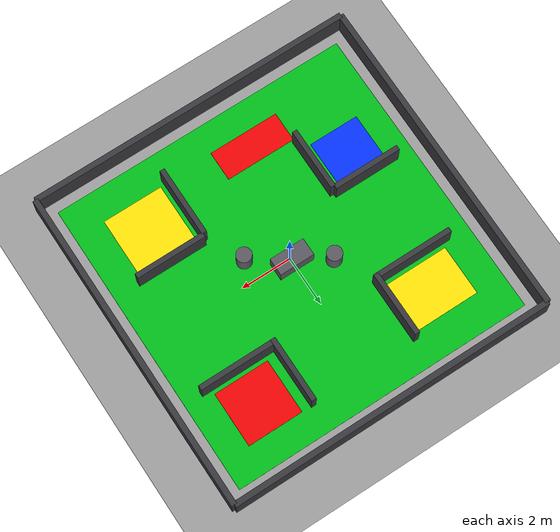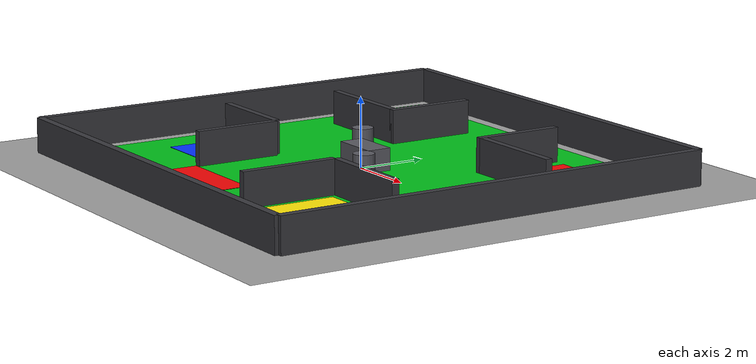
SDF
<?xml version="1.0"?>
<sdf version="1.6">
  <world name="mixed_zones">
    <gravity>0 0 -9.8</gravity>
    <scene>
      <ambient>0.55 0.55 0.55 1</ambient>
      <background>0.78 0.82 0.86 1</background>
      <shadows>true</shadows>
    </scene>

    <light type="directional" name="sun">
      <cast_shadows>true</cast_shadows>
      <pose>0 0 12 0 0 0</pose>
      <diffuse>0.95 0.95 0.9 1</diffuse>
      <specular>0.15 0.15 0.15 1</specular>
      <direction>-0.35 0.25 -0.9</direction>
    </light>

    <model name="ground_plane">
      <static>true</static>
      <link name="link">
        <collision name="collision">
          <geometry><plane><normal>0 0 1</normal></plane></geometry>
          <surface>
            <friction><ode><mu>1.0</mu><mu2>1.0</mu2></ode></friction>
          </surface>
        </collision>
        <visual name="visual">
          <geometry><plane><normal>0 0 1</normal><size>80 80</size></plane></geometry>
          <material><ambient>0.62 0.62 0.62 1</ambient><diffuse>0.62 0.62 0.62 1</diffuse></material>
        </visual>
      </link>
    </model>

    <model name="green_general_coverage_floor">
      <static>true</static>
      <pose>0 0 0.012 0 0 0</pose>
      <link name="link">
        <visual name="visual">
          <geometry><box><size>12 12 0.01</size></box></geometry>
          <material><ambient>0.0 0.75 0.1 1</ambient><diffuse>0.0 0.75 0.1 1</diffuse></material>
        </visual>
      </link>
    </model>

    <model name="yellow_vault_entrance_nw">
      <static>true</static>
      <pose>-3.6 3.7 0.02 0 0 0</pose>
      <link name="link">
        <visual name="visual">
          <geometry><box><size>2.5 2.0 0.01</size></box></geometry>
          <material><ambient>1.0 0.9 0.02 1</ambient><diffuse>1.0 0.9 0.02 1</diffuse></material>
        </visual>
      </link>
    </model>

    <model name="yellow_loading_dock_se">
      <static>true</static>
      <pose>3.6 -3.6 0.02 0 0 0</pose>
      <link name="link">
        <visual name="visual">
          <geometry><box><size>2.4 2.4 0.01</size></box></geometry>
          <material><ambient>1.0 0.9 0.02 1</ambient><diffuse>1.0 0.9 0.02 1</diffuse></material>
        </visual>
      </link>
    </model>

    <model name="red_cctv_server_corner">
      <static>true</static>
      <pose>3.8 3.8 0.022 0 0 0</pose>
      <link name="link">
        <visual name="visual">
          <geometry><box><size>2.2 2.2 0.01</size></box></geometry>
          <material><ambient>0.95 0.02 0.02 1</ambient><diffuse>0.95 0.02 0.02 1</diffuse></material>
        </visual>
      </link>
    </model>

    <model name="red_camera_covered_corridor">
      <static>true</static>
      <pose>-1.2 -4.3 0.022 0 0 0</pose>
      <link name="link">
        <visual name="visual">
          <geometry><box><size>2.8 1.2 0.01</size></box></geometry>
          <material><ambient>0.95 0.02 0.02 1</ambient><diffuse>0.95 0.02 0.02 1</diffuse></material>
        </visual>
      </link>
    </model>

    <model name="blue_already_swept_storage">
      <static>true</static>
      <pose>-4.0 -2.2 0.022 0 0 0</pose>
      <link name="link">
        <visual name="visual">
          <geometry><box><size>2.0 2.0 0.01</size></box></geometry>
          <material><ambient>0.02 0.2 1.0 1</ambient><diffuse>0.02 0.2 1.0 1</diffuse></material>
        </visual>
      </link>
    </model>

    <model name="outer_north">
      <static>true</static>
      <pose>0 6.5 0.500 0 0 0</pose>
      <link name="link">
        <collision name="collision"><geometry><box><size>13 0.22 1.0</size></box></geometry></collision>
        <visual name="visual"><geometry><box><size>13 0.22 1.0</size></box></geometry><material><ambient>0.22 0.22 0.24 1</ambient><diffuse>0.22 0.22 0.24 1</diffuse></material></visual>
      </link>
    </model>

    <model name="outer_south">
      <static>true</static>
      <pose>0 -6.5 0.500 0 0 0</pose>
      <link name="link">
        <collision name="collision"><geometry><box><size>13 0.22 1.0</size></box></geometry></collision>
        <visual name="visual"><geometry><box><size>13 0.22 1.0</size></box></geometry><material><ambient>0.22 0.22 0.24 1</ambient><diffuse>0.22 0.22 0.24 1</diffuse></material></visual>
      </link>
    </model>

    <model name="outer_east">
      <static>true</static>
      <pose>6.5 0 0.500 0 0 1.5708</pose>
      <link name="link">
        <collision name="collision"><geometry><box><size>13 0.22 1.0</size></box></geometry></collision>
        <visual name="visual"><geometry><box><size>13 0.22 1.0</size></box></geometry><material><ambient>0.22 0.22 0.24 1</ambient><diffuse>0.22 0.22 0.24 1</diffuse></material></visual>
      </link>
    </model>

    <model name="outer_west">
      <static>true</static>
      <pose>-6.5 0 0.500 0 0 1.5708</pose>
      <link name="link">
        <collision name="collision"><geometry><box><size>13 0.22 1.0</size></box></geometry></collision>
        <visual name="visual"><geometry><box><size>13 0.22 1.0</size></box></geometry><material><ambient>0.22 0.22 0.24 1</ambient><diffuse>0.22 0.22 0.24 1</diffuse></material></visual>
      </link>
    </model>

    <model name="northwest_room_south_wall">
      <static>true</static>
      <pose>-3.6 2.45 0.500 0 0 0</pose>
      <link name="link">
        <collision name="collision"><geometry><box><size>3.1 0.2 1.0</size></box></geometry></collision>
        <visual name="visual"><geometry><box><size>3.1 0.2 1.0</size></box></geometry><material><ambient>0.22 0.22 0.24 1</ambient><diffuse>0.22 0.22 0.24 1</diffuse></material></visual>
      </link>
    </model>

    <model name="northwest_room_east_wall">
      <static>true</static>
      <pose>-2.05 3.65 0.500 0 0 0</pose>
      <link name="link">
        <collision name="collision"><geometry><box><size>0.2 2.6 1.0</size></box></geometry></collision>
        <visual name="visual"><geometry><box><size>0.2 2.6 1.0</size></box></geometry><material><ambient>0.22 0.22 0.24 1</ambient><diffuse>0.22 0.22 0.24 1</diffuse></material></visual>
      </link>
    </model>

    <model name="server_room_south_wall">
      <static>true</static>
      <pose>3.8 2.45 0.500 0 0 0</pose>
      <link name="link">
        <collision name="collision"><geometry><box><size>3.0 0.2 1.0</size></box></geometry></collision>
        <visual name="visual"><geometry><box><size>3.0 0.2 1.0</size></box></geometry><material><ambient>0.22 0.22 0.24 1</ambient><diffuse>0.22 0.22 0.24 1</diffuse></material></visual>
      </link>
    </model>

    <model name="server_room_west_wall">
      <static>true</static>
      <pose>2.25 3.65 0.500 0 0 0</pose>
      <link name="link">
        <collision name="collision"><geometry><box><size>0.2 2.6 1.0</size></box></geometry></collision>
        <visual name="visual"><geometry><box><size>0.2 2.6 1.0</size></box></geometry><material><ambient>0.22 0.22 0.24 1</ambient><diffuse>0.22 0.22 0.24 1</diffuse></material></visual>
      </link>
    </model>

    <model name="storage_room_north_wall">
      <static>true</static>
      <pose>-4.0 -1.1 0.500 0 0 0</pose>
      <link name="link">
        <collision name="collision"><geometry><box><size>2.7 0.2 1.0</size></box></geometry></collision>
        <visual name="visual"><geometry><box><size>2.7 0.2 1.0</size></box></geometry><material><ambient>0.22 0.22 0.24 1</ambient><diffuse>0.22 0.22 0.24 1</diffuse></material></visual>
      </link>
    </model>

    <model name="storage_room_east_wall">
      <static>true</static>
      <pose>-2.6 -2.4 0.500 0 0 0</pose>
      <link name="link">
        <collision name="collision"><geometry><box><size>0.2 2.5 1.0</size></box></geometry></collision>
        <visual name="visual"><geometry><box><size>0.2 2.5 1.0</size></box></geometry><material><ambient>0.22 0.22 0.24 1</ambient><diffuse>0.22 0.22 0.24 1</diffuse></material></visual>
      </link>
    </model>

    <model name="loading_dock_north_wall">
      <static>true</static>
      <pose>3.6 -2.15 0.500 0 0 0</pose>
      <link name="link">
        <collision name="collision"><geometry><box><size>2.8 0.2 1.0</size></box></geometry></collision>
        <visual name="visual"><geometry><box><size>2.8 0.2 1.0</size></box></geometry><material><ambient>0.22 0.22 0.24 1</ambient><diffuse>0.22 0.22 0.24 1</diffuse></material></visual>
      </link>
    </model>

    <model name="loading_dock_west_wall">
      <static>true</static>
      <pose>2.15 -3.6 0.500 0 0 0</pose>
      <link name="link">
        <collision name="collision"><geometry><box><size>0.2 2.8 1.0</size></box></geometry></collision>
        <visual name="visual"><geometry><box><size>0.2 2.8 1.0</size></box></geometry><material><ambient>0.22 0.22 0.24 1</ambient><diffuse>0.22 0.22 0.24 1</diffuse></material></visual>
      </link>
    </model>

    <model name="central_table_obstacle">
      <static>true</static>
      <pose>0 0.15 0.325 0 0 0</pose>
      <link name="link">
        <collision name="collision"><geometry><box><size>1.4 0.7 0.65</size></box></geometry></collision>
        <visual name="visual"><geometry><box><size>1.4 0.7 0.65</size></box></geometry><material><ambient>0.35 0.35 0.38 1</ambient><diffuse>0.35 0.35 0.38 1</diffuse></material></visual>
      </link>
    </model>

    <model name="pillar_left_of_center">
      <static>true</static>
      <pose>-1.3 0.9 0.400 0 0 0</pose>
      <link name="link">
        <collision name="collision"><geometry><cylinder><radius>0.3</radius><length>0.8</length></cylinder></geometry></collision>
        <visual name="visual"><geometry><cylinder><radius>0.3</radius><length>0.8</length></cylinder></geometry><material><ambient>0.35 0.35 0.38 1</ambient><diffuse>0.35 0.35 0.38 1</diffuse></material></visual>
      </link>
    </model>

    <model name="pillar_right_of_center">
      <static>true</static>
      <pose>1.4 -0.8 0.400 0 0 0</pose>
      <link name="link">
        <collision name="collision"><geometry><cylinder><radius>0.3</radius><length>0.8</length></cylinder></geometry></collision>
        <visual name="visual"><geometry><cylinder><radius>0.3</radius><length>0.8</length></cylinder></geometry><material><ambient>0.35 0.35 0.38 1</ambient><diffuse>0.35 0.35 0.38 1</diffuse></material></visual>
      </link>
    </model>

  </world>
</sdf>
